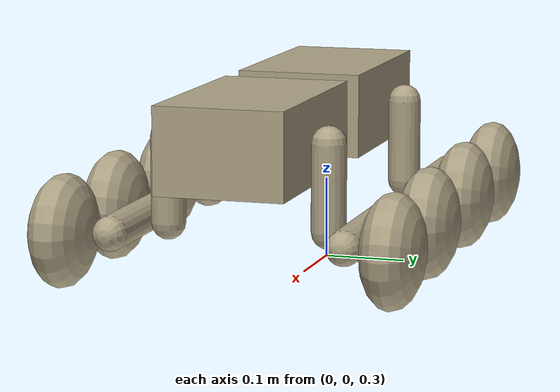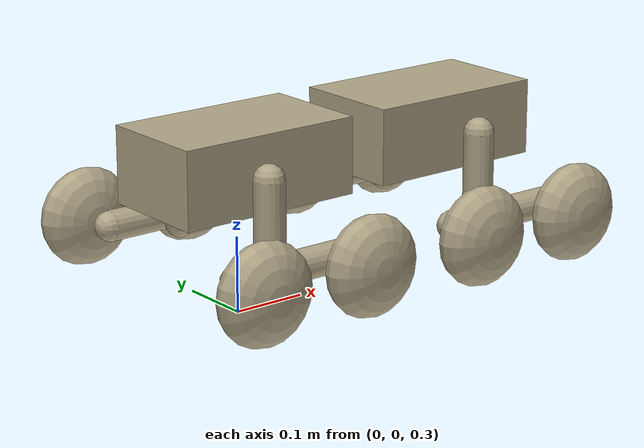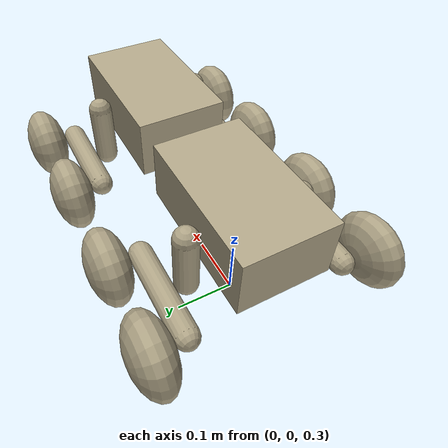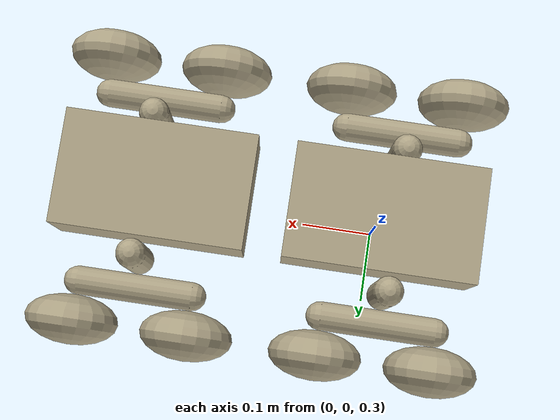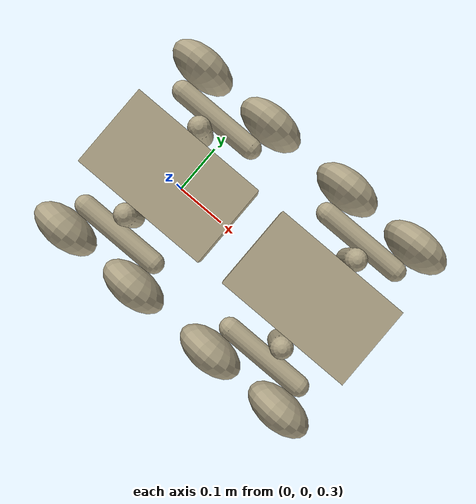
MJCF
<mujoco model="MuJoCo Model">
  <compiler angle="radian"/>

  <worldbody>
    <body name="torso" pos="0 0 0.5">
      <joint name="torso_joint" type="free"/>
      <geom size="0.125 0.075 0.05" type="box" mass="10" rgba="0.694118 0.65098 0.533333 1"/>
      <site name="torso_imu_site" pos="0 0 0" size="0.01" rgba="1 0 0 1"/>
      <body name="torso_left_thigh" pos="-0.02 0.075 0">
        <joint name="torso_left_thigh_joint" pos="0 0 0" axis="0 1 0" armature="0.0072" damping="5"/>
        <geom name="torso_left_thigh_geom" size="0.02 0.05" pos="0 0.02 -0.05" type="capsule" mass="0.5" rgba="0.694118 0.65098 0.533333 1"/>
        <body name="torso_left_shin" pos="0 0.06 -0.1">
          <joint name="torso_left_thigh_shin_joint" pos="0 0 0" axis="0 1 0" armature="0.01805" damping="5"/>
          <geom name="torso_left_shin_geom" size="0.02 0.08" quat="0.707107 0 0.707107 0" type="capsule" mass="0.5" rgba="0.694118 0.65098 0.533333 1"/>
          <body name="torso_left_front_wheel" pos="0.08 0.055 0">
            <joint name="torso_left_shin_front_wheel_joint" pos="0 0 0" axis="0 1 0" armature="1e-05" damping="0.2"/>
            <geom name="torso_left_front_wheel_geom" size="0.065 0.065 0.035" quat="0.707107 0.707107 0 0" type="ellipsoid" condim="1" solref="0.2 0.5" mass="0.5" rgba="0.694118 0.65098 0.533333 1"/>
          </body>
          <body name="torso_left_rear_wheel" pos="-0.08 0.055 0">
            <joint name="torso_left_shin_rear_wheel_joint" pos="0 0 0" axis="0 1 0" armature="1e-05" damping="0.2"/>
            <geom name="torso_left_rear_wheel_geom" size="0.065 0.065 0.035" quat="0.707107 0.707107 0 0" type="ellipsoid" condim="1" solref="0.2 0.5" mass="0.5" rgba="0.694118 0.65098 0.533333 1"/>
          </body>
        </body>
      </body>
      <body name="torso_right_thigh" pos="-0.02 -0.075 0">
        <joint name="torso_right_thigh_joint" pos="0 0 0" axis="0 1 0" armature="0.0072" damping="5"/>
        <geom name="torso_right_thigh_geom" size="0.02 0.05" pos="0 -0.02 -0.05" type="capsule" mass="0.5" rgba="0.694118 0.65098 0.533333 1"/>
        <body name="torso_right_shin" pos="0 -0.06 -0.1">
          <joint name="torso_right_thigh_shin_joint" pos="0 0 0" axis="0 1 0" armature="0.01805" damping="5"/>
          <geom name="torso_right_shin_geom" size="0.02 0.08" quat="0.707107 0 0.707107 0" type="capsule" mass="0.5" rgba="0.694118 0.65098 0.533333 1"/>
          <body name="torso_right_front_wheel" pos="0.08 -0.055 0">
            <joint name="torso_right_shin_front_wheel_joint" pos="0 0 0" axis="0 1 0" armature="1e-05" damping="0.2"/>
            <geom name="torso_right_front_wheel_geom" size="0.065 0.065 0.035" quat="0.707107 0.707107 0 0" type="ellipsoid" condim="1" solref="0.2 0.5" mass="0.5" rgba="0.694118 0.65098 0.533333 1"/>
          </body>
          <body name="torso_right_rear_wheel" pos="-0.08 -0.055 0">
            <joint name="torso_right_shin_rear_wheel_joint" pos="0 0 0" axis="0 1 0" armature="1e-05" damping="0.2"/>
            <geom name="torso_right_rear_wheel_geom" size="0.065 0.065 0.035" quat="0.707107 0.707107 0 0" type="ellipsoid" condim="1" solref="0.2 0.5" mass="0.5" rgba="0.694118 0.65098 0.533333 1"/>
          </body>
        </body>
      </body>
      <body name="head" pos="0.3 0 0">
        <joint name="head_joint" pos="-0.125 0 0" axis="1 0 0" stiffness="10" range="-0.174533 0.174533" damping="1"/>
        <geom size="0.125 0.075 0.05" type="box" mass="10" rgba="0.694118 0.65098 0.533333 1"/>
        <site name="head_imu_site" pos="0 0 0" size="0.01" rgba="1 0 0 1"/>
        <body name="head_left_thigh" pos="0.02 0.075 0">
          <joint name="head_left_thigh_joint" pos="0 0 0" axis="0 1 0" armature="0.0072" damping="5"/>
          <geom name="head_left_thigh_geom" size="0.02 0.05" pos="0 0.02 -0.05" type="capsule" mass="0.5" rgba="0.694118 0.65098 0.533333 1"/>
          <body name="head_left_shin" pos="0 0.06 -0.1">
            <joint name="head_left_thigh_shin_joint" pos="0 0 0" axis="0 1 0" armature="0.01805" damping="5"/>
            <geom name="head_left_shin_geom" size="0.02 0.08" quat="0.707107 0 0.707107 0" type="capsule" mass="0.5" rgba="0.694118 0.65098 0.533333 1"/>
            <body name="head_left_front_wheel" pos="0.08 0.055 0">
              <joint name="head_left_shin_front_wheel_joint" pos="0 0 0" axis="0 1 0" armature="1e-05" damping="0.2"/>
              <geom name="head_left_front_wheel_geom" size="0.065 0.065 0.035" quat="0.707107 0.707107 0 0" type="ellipsoid" condim="1" solref="0.2 0.5" mass="0.5" rgba="0.694118 0.65098 0.533333 1"/>
            </body>
            <body name="head_left_rear_wheel" pos="-0.08 0.055 0">
              <joint name="head_left_shin_rear_wheel_joint" pos="0 0 0" axis="0 1 0" armature="1e-05" damping="0.2"/>
              <geom name="head_left_rear_wheel_geom" size="0.065 0.065 0.035" quat="0.707107 0.707107 0 0" type="ellipsoid" condim="1" solref="0.2 0.5" mass="0.5" rgba="0.694118 0.65098 0.533333 1"/>
            </body>
          </body>
        </body>
        <body name="head_right_thigh" pos="0.02 -0.075 0">
          <joint name="head_right_thigh_joint" pos="0 0 0" axis="0 1 0" armature="0.0072" damping="5"/>
          <geom name="head_right_thigh_geom" size="0.02 0.05" pos="0 -0.02 -0.05" type="capsule" mass="0.5" rgba="0.694118 0.65098 0.533333 1"/>
          <body name="head_right_shin" pos="0 -0.06 -0.1">
            <joint name="head_right_thigh_shin_joint" pos="0 0 0" axis="0 1 0" armature="0.01805" damping="5"/>
            <geom name="head_right_shin_geom" size="0.02 0.08" quat="0.707107 0 0.707107 0" type="capsule" mass="0.5" rgba="0.694118 0.65098 0.533333 1"/>
            <body name="head_right_front_wheel" pos="0.08 -0.055 0">
              <joint name="head_right_shin_front_wheel_joint" pos="0 0 0" axis="0 1 0" armature="1e-05" damping="0.2"/>
              <geom name="head_right_front_wheel_geom" size="0.065 0.065 0.035" quat="0.707107 0.707107 0 0" type="ellipsoid" condim="1" solref="0.2 0.5" mass="0.5" rgba="0.694118 0.65098 0.533333 1"/>
            </body>
            <body name="head_right_rear_wheel" pos="-0.08 -0.055 0">
              <joint name="head_right_shin_rear_wheel_joint" pos="0 0 0" axis="0 1 0" armature="1e-05" damping="0.2"/>
              <geom name="head_right_rear_wheel_geom" size="0.065 0.065 0.035" quat="0.707107 0.707107 0 0" type="ellipsoid" condim="1" solref="0.2 0.5" mass="0.5" rgba="0.694118 0.65098 0.533333 1"/>
            </body>
          </body>
        </body>
      </body>
    </body>
  </worldbody>

  <actuator>
    <general name="bl_hip" joint="torso_left_thigh_joint"/>
    <general name="bl_knee" joint="torso_left_thigh_shin_joint"/>
    <general name="bl_wheel1_joint" joint="torso_left_shin_front_wheel_joint"/>
    <general name="bl_wheel2_joint" joint="torso_left_shin_rear_wheel_joint"/>
    <general name="br_hip" joint="torso_right_thigh_joint"/>
    <general name="br_knee" joint="torso_right_thigh_shin_joint"/>
    <general name="br_wheel1_joint" joint="torso_right_shin_front_wheel_joint"/>
    <general name="br_wheel2_joint" joint="torso_right_shin_rear_wheel_joint"/>
    <general name="fl_hip" joint="head_left_thigh_joint"/>
    <general name="fl_knee" joint="head_left_thigh_shin_joint"/>
    <general name="fl_wheel1_joint" joint="head_left_shin_front_wheel_joint"/>
    <general name="fl_wheel2_joint" joint="head_left_shin_rear_wheel_joint"/>
    <general name="fr_hip" joint="head_right_thigh_joint"/>
    <general name="fr_knee" joint="head_right_thigh_shin_joint"/>
    <general name="fr_wheel1_joint" joint="head_right_shin_front_wheel_joint"/>
    <general name="fr_wheel2_joint" joint="head_right_shin_rear_wheel_joint"/>
  </actuator>
</mujoco>
